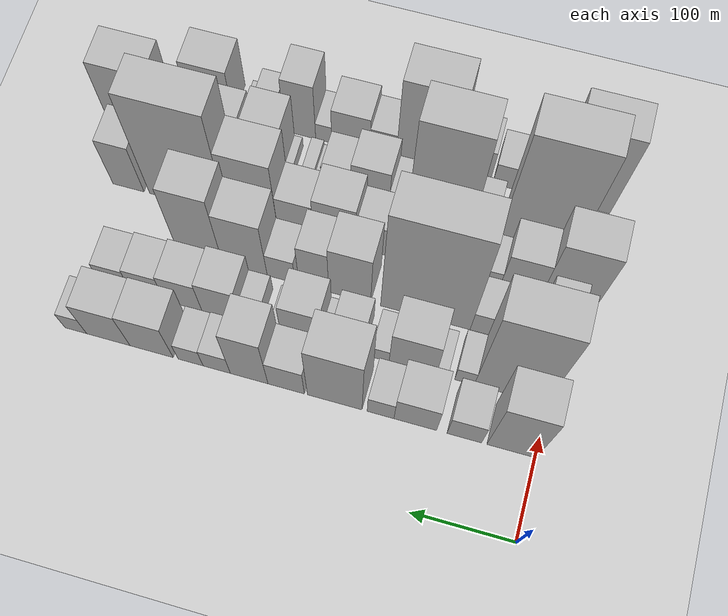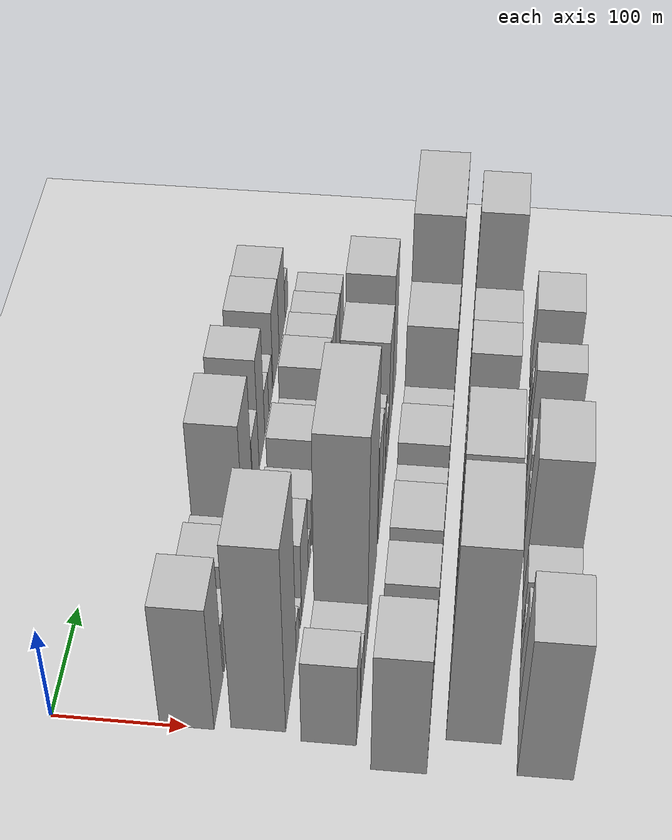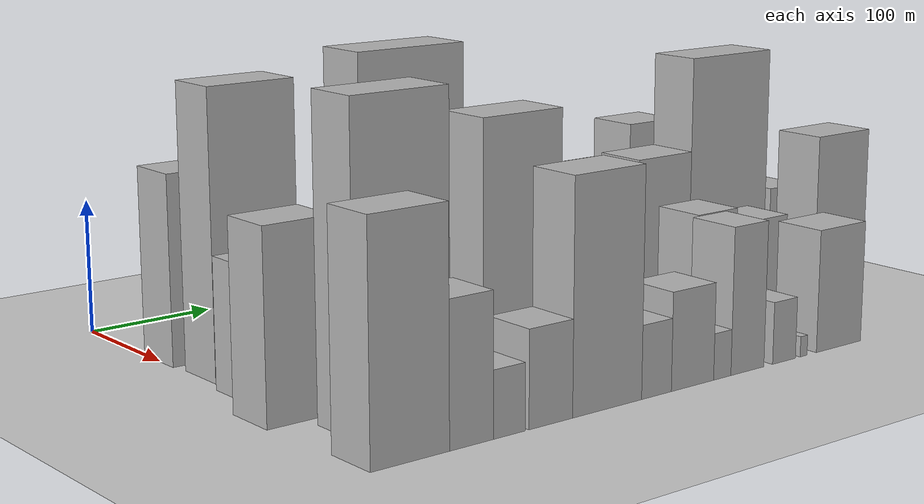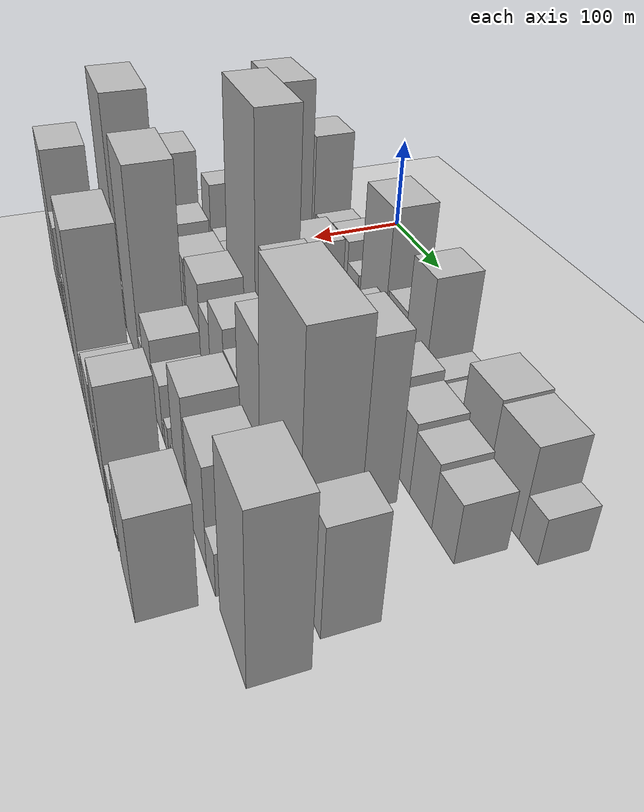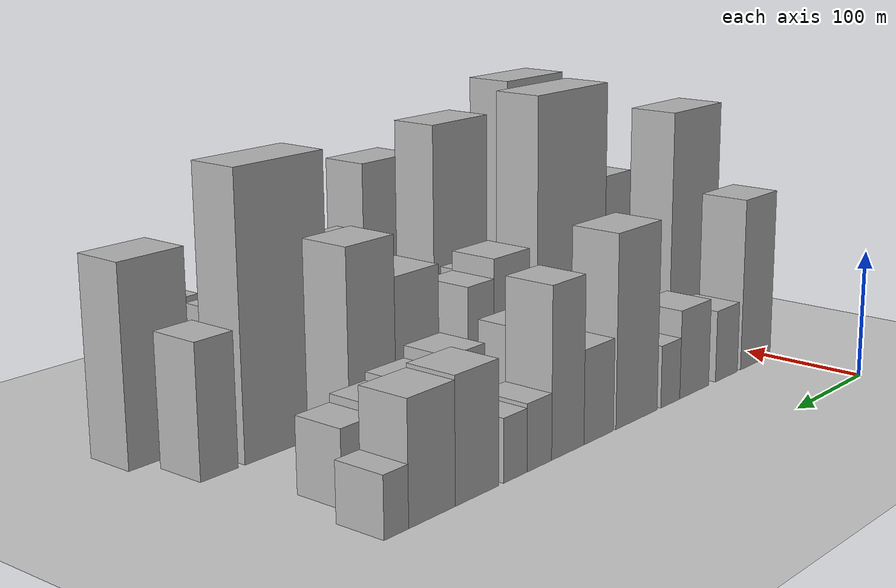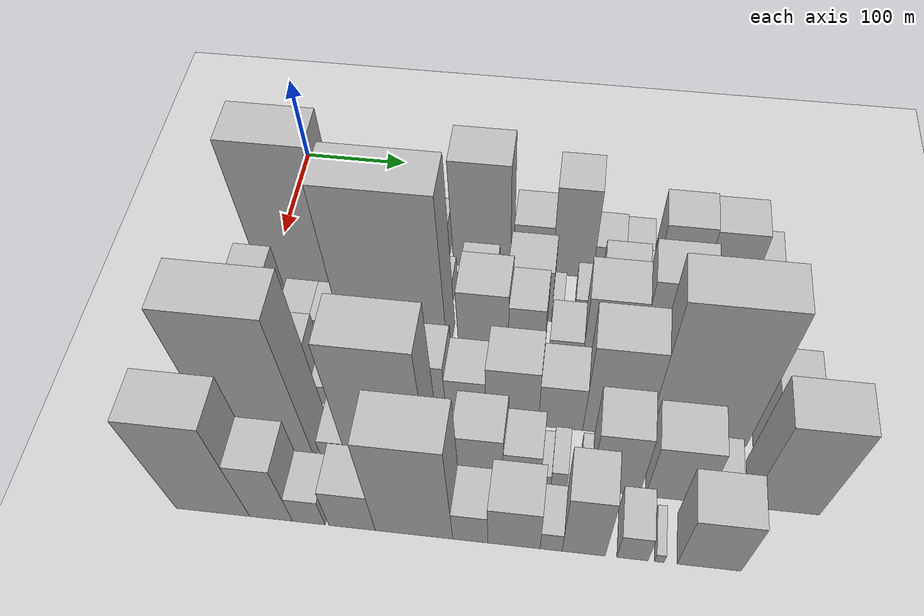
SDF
<sdf version="1.6">
 <world name="default">
  <include>
   <name>ground_plane_2</name>
   <uri>model://HANNAS_ground_plane</uri>
   <pose>100 0 0  0 0 0</pose>
  </include>
  <model name="building_30">
   <static>1</static>
   <pose>100.0000 22.7070 0 0.000000 0.000000 0.000000</pose>
   <link name="link">
    <pose>0 0 69.00 0 0 0</pose>
    <collision name="collision"><geometry><box><size>40.0000 46.8853 138.0000</size></box></geometry></collision>
    <visual name="visual">
     <cast_shadows>0</cast_shadows>
     <geometry><box><size>40.0000 46.8853 138.0000</size></box></geometry>
     <material>
      <script>
       <uri>model://HANNAS_wall/materials/scripts</uri>
       <uri>model://HANNAS_wall/materials/textures</uri>
       <name>vrc/HANNAS_wall</name>
      </script>
     </material>
    </visual>
   </link>
  </model>
  <model name="building_31">
   <static>1</static>
   <pose>100.0000 67.7144 0 0.000000 0.000000 0.000000</pose>
   <link name="link">
    <pose>0 0 28.50 0 0 0</pose>
    <collision name="collision"><geometry><box><size>40.0000 33.1295 57.0000</size></box></geometry></collision>
    <visual name="visual">
     <cast_shadows>0</cast_shadows>
     <geometry><box><size>40.0000 33.1295 57.0000</size></box></geometry>
     <material>
      <script>
       <uri>model://HANNAS_wall/materials/scripts</uri>
       <uri>model://HANNAS_wall/materials/textures</uri>
       <name>vrc/HANNAS_wall</name>
      </script>
     </material>
    </visual>
   </link>
  </model>
  <model name="building_32">
   <static>1</static>
   <pose>100.0000 114.8831 0 0.000000 0.000000 0.000000</pose>
   <link name="link">
    <pose>0 0 34.50 0 0 0</pose>
    <collision name="collision"><geometry><box><size>40.0000 41.2078 69.0000</size></box></geometry></collision>
    <visual name="visual">
     <cast_shadows>0</cast_shadows>
     <geometry><box><size>40.0000 41.2078 69.0000</size></box></geometry>
     <material>
      <script>
       <uri>model://HANNAS_wall/materials/scripts</uri>
       <uri>model://HANNAS_wall/materials/textures</uri>
       <name>vrc/HANNAS_wall</name>
      </script>
     </material>
    </visual>
   </link>
  </model>
  <model name="building_33">
   <static>1</static>
   <pose>100.0000 148.5015 0 0.000000 0.000000 0.000000</pose>
   <link name="link">
    <pose>0 0 24.00 0 0 0</pose>
    <collision name="collision"><geometry><box><size>40.0000 26.0290 48.0000</size></box></geometry></collision>
    <visual name="visual">
     <cast_shadows>0</cast_shadows>
     <geometry><box><size>40.0000 26.0290 48.0000</size></box></geometry>
     <material>
      <script>
       <uri>model://HANNAS_wall/materials/scripts</uri>
       <uri>model://HANNAS_wall/materials/textures</uri>
       <name>vrc/HANNAS_wall</name>
      </script>
     </material>
    </visual>
   </link>
  </model>
  <model name="building_34">
   <static>1</static>
   <pose>100.0000 193.2299 0 0.000000 0.000000 0.000000</pose>
   <link name="link">
    <pose>0 0 72.00 0 0 0</pose>
    <collision name="collision"><geometry><box><size>40.0000 53.4279 144.0000</size></box></geometry></collision>
    <visual name="visual">
     <cast_shadows>0</cast_shadows>
     <geometry><box><size>40.0000 53.4279 144.0000</size></box></geometry>
     <material>
      <script>
       <uri>model://HANNAS_wall/materials/scripts</uri>
       <uri>model://HANNAS_wall/materials/textures</uri>
       <name>vrc/HANNAS_wall</name>
      </script>
     </material>
    </visual>
   </link>
  </model>
  <model name="building_35">
   <static>1</static>
   <pose>100.0000 240.8931 0 0.000000 0.000000 0.000000</pose>
   <link name="link">
    <pose>0 0 34.50 0 0 0</pose>
    <collision name="collision"><geometry><box><size>40.0000 35.8984 69.0000</size></box></geometry></collision>
    <visual name="visual">
     <cast_shadows>0</cast_shadows>
     <geometry><box><size>40.0000 35.8984 69.0000</size></box></geometry>
     <material>
      <script>
       <uri>model://HANNAS_wall/materials/scripts</uri>
       <uri>model://HANNAS_wall/materials/textures</uri>
       <name>vrc/HANNAS_wall</name>
      </script>
     </material>
    </visual>
   </link>
  </model>
  <model name="building_36">
   <static>1</static>
   <pose>100.0000 277.5376 0 0.000000 0.000000 0.000000</pose>
   <link name="link">
    <pose>0 0 61.50 0 0 0</pose>
    <collision name="collision"><geometry><box><size>40.0000 37.3906 123.0000</size></box></geometry></collision>
    <visual name="visual">
     <cast_shadows>0</cast_shadows>
     <geometry><box><size>40.0000 37.3906 123.0000</size></box></geometry>
     <material>
      <script>
       <uri>model://HANNAS_wall/materials/scripts</uri>
       <uri>model://HANNAS_wall/materials/textures</uri>
       <name>vrc/HANNAS_wall</name>
      </script>
     </material>
    </visual>
   </link>
  </model>
  <model name="building_37">
   <static>1</static>
   <pose>100.0000 309.8478 0 0.000000 0.000000 0.000000</pose>
   <link name="link">
    <pose>0 0 24.00 0 0 0</pose>
    <collision name="collision"><geometry><box><size>40.0000 27.2298 48.0000</size></box></geometry></collision>
    <visual name="visual">
     <cast_shadows>0</cast_shadows>
     <geometry><box><size>40.0000 27.2298 48.0000</size></box></geometry>
     <material>
      <script>
       <uri>model://HANNAS_wall/materials/scripts</uri>
       <uri>model://HANNAS_wall/materials/textures</uri>
       <name>vrc/HANNAS_wall</name>
      </script>
     </material>
    </visual>
   </link>
  </model>
  <model name="building_38">
   <static>1</static>
   <pose>100.0000 335.9975 0 0.000000 0.000000 0.000000</pose>
   <link name="link">
    <pose>0 0 22.50 0 0 0</pose>
    <collision name="collision"><geometry><box><size>40.0000 25.0695 45.0000</size></box></geometry></collision>
    <visual name="visual">
     <cast_shadows>0</cast_shadows>
     <geometry><box><size>40.0000 25.0695 45.0000</size></box></geometry>
     <material>
      <script>
       <uri>model://HANNAS_wall/materials/scripts</uri>
       <uri>model://HANNAS_wall/materials/textures</uri>
       <name>vrc/HANNAS_wall</name>
      </script>
     </material>
    </visual>
   </link>
  </model>
  <model name="building_39">
   <static>1</static>
   <pose>100.0000 375.4038 0 0.000000 0.000000 0.000000</pose>
   <link name="link">
    <pose>0 0 43.50 0 0 0</pose>
    <collision name="collision"><geometry><box><size>40.0000 43.7431 87.0000</size></box></geometry></collision>
    <visual name="visual">
     <cast_shadows>0</cast_shadows>
     <geometry><box><size>40.0000 43.7431 87.0000</size></box></geometry>
     <material>
      <script>
       <uri>model://HANNAS_wall/materials/scripts</uri>
       <uri>model://HANNAS_wall/materials/textures</uri>
       <name>vrc/HANNAS_wall</name>
      </script>
     </material>
    </visual>
   </link>
  </model>
  <model name="building_40">
   <static>1</static>
   <pose>100.0000 419.3778 0 0.000000 0.000000 0.000000</pose>
   <link name="link">
    <pose>0 0 42.00 0 0 0</pose>
    <collision name="collision"><geometry><box><size>40.0000 44.2050 84.0000</size></box></geometry></collision>
    <visual name="visual">
     <cast_shadows>0</cast_shadows>
     <geometry><box><size>40.0000 44.2050 84.0000</size></box></geometry>
     <material>
      <script>
       <uri>model://HANNAS_wall/materials/scripts</uri>
       <uri>model://HANNAS_wall/materials/textures</uri>
       <name>vrc/HANNAS_wall</name>
      </script>
     </material>
    </visual>
   </link>
  </model>
  <model name="building_41">
   <static>1</static>
   <pose>100.0000 452.5612 0 0.000000 0.000000 0.000000</pose>
   <link name="link">
    <pose>0 0 21.00 0 0 0</pose>
    <collision name="collision"><geometry><box><size>40.0000 22.1616 42.0000</size></box></geometry></collision>
    <visual name="visual">
     <cast_shadows>0</cast_shadows>
     <geometry><box><size>40.0000 22.1616 42.0000</size></box></geometry>
     <material>
      <script>
       <uri>model://HANNAS_wall/materials/scripts</uri>
       <uri>model://HANNAS_wall/materials/textures</uri>
       <name>vrc/HANNAS_wall</name>
      </script>
     </material>
    </visual>
   </link>
  </model>
  <model name="building_77">
   <static>1</static>
   <pose>152.0000 36.4637 0 0.000000 0.000000 0.000000</pose>
   <link name="link">
    <pose>0 0 102.00 0 0 0</pose>
    <collision name="collision"><geometry><box><size>40.0000 68.4907 204.0000</size></box></geometry></collision>
    <visual name="visual">
     <cast_shadows>0</cast_shadows>
     <geometry><box><size>40.0000 68.4907 204.0000</size></box></geometry>
     <material>
      <script>
       <uri>model://HANNAS_wall/materials/scripts</uri>
       <uri>model://HANNAS_wall/materials/textures</uri>
       <name>vrc/HANNAS_wall</name>
      </script>
     </material>
    </visual>
   </link>
  </model>
  <model name="building_78">
   <static>1</static>
   <pose>152.0000 80.2445 0 0.000000 0.000000 0.000000</pose>
   <link name="link">
    <pose>0 0 18.00 0 0 0</pose>
    <collision name="collision"><geometry><box><size>40.0000 19.0711 36.0000</size></box></geometry></collision>
    <visual name="visual">
     <cast_shadows>0</cast_shadows>
     <geometry><box><size>40.0000 19.0711 36.0000</size></box></geometry>
     <material>
      <script>
       <uri>model://HANNAS_wall/materials/scripts</uri>
       <uri>model://HANNAS_wall/materials/textures</uri>
       <name>vrc/HANNAS_wall</name>
      </script>
     </material>
    </visual>
   </link>
  </model>
  <model name="building_79">
   <static>1</static>
   <pose>152.0000 102.1510 0 0.000000 0.000000 0.000000</pose>
   <link name="link">
    <pose>0 0 12.00 0 0 0</pose>
    <collision name="collision"><geometry><box><size>40.0000 10.7418 24.0000</size></box></geometry></collision>
    <visual name="visual">
     <cast_shadows>0</cast_shadows>
     <geometry><box><size>40.0000 10.7418 24.0000</size></box></geometry>
     <material>
      <script>
       <uri>model://HANNAS_wall/materials/scripts</uri>
       <uri>model://HANNAS_wall/materials/textures</uri>
       <name>vrc/HANNAS_wall</name>
      </script>
     </material>
    </visual>
   </link>
  </model>
  <model name="building_80">
   <static>1</static>
   <pose>152.0000 130.8561 0 0.000000 0.000000 0.000000</pose>
   <link name="link">
    <pose>0 0 42.00 0 0 0</pose>
    <collision name="collision"><geometry><box><size>40.0000 46.6685 84.0000</size></box></geometry></collision>
    <visual name="visual">
     <cast_shadows>0</cast_shadows>
     <geometry><box><size>40.0000 46.6685 84.0000</size></box></geometry>
     <material>
      <script>
       <uri>model://HANNAS_wall/materials/scripts</uri>
       <uri>model://HANNAS_wall/materials/textures</uri>
       <name>vrc/HANNAS_wall</name>
      </script>
     </material>
    </visual>
   </link>
  </model>
  <model name="building_81">
   <static>1</static>
   <pose>152.0000 162.9774 0 0.000000 0.000000 0.000000</pose>
   <link name="link">
    <pose>0 0 15.00 0 0 0</pose>
    <collision name="collision"><geometry><box><size>40.0000 17.5741 30.0000</size></box></geometry></collision>
    <visual name="visual">
     <cast_shadows>0</cast_shadows>
     <geometry><box><size>40.0000 17.5741 30.0000</size></box></geometry>
     <material>
      <script>
       <uri>model://HANNAS_wall/materials/scripts</uri>
       <uri>model://HANNAS_wall/materials/textures</uri>
       <name>vrc/HANNAS_wall</name>
      </script>
     </material>
    </visual>
   </link>
  </model>
  <model name="building_82">
   <static>1</static>
   <pose>152.0000 195.7945 0 0.000000 0.000000 0.000000</pose>
   <link name="link">
    <pose>0 0 27.00 0 0 0</pose>
    <collision name="collision"><geometry><box><size>40.0000 32.0601 54.0000</size></box></geometry></collision>
    <visual name="visual">
     <cast_shadows>0</cast_shadows>
     <geometry><box><size>40.0000 32.0601 54.0000</size></box></geometry>
     <material>
      <script>
       <uri>model://HANNAS_wall/materials/scripts</uri>
       <uri>model://HANNAS_wall/materials/textures</uri>
       <name>vrc/HANNAS_wall</name>
      </script>
     </material>
    </visual>
   </link>
  </model>
  <model name="building_83">
   <static>1</static>
   <pose>152.0000 217.2642 0 0.000000 0.000000 0.000000</pose>
   <link name="link">
    <pose>0 0 12.00 0 0 0</pose>
    <collision name="collision"><geometry><box><size>40.0000 10.8795 24.0000</size></box></geometry></collision>
    <visual name="visual">
     <cast_shadows>0</cast_shadows>
     <geometry><box><size>40.0000 10.8795 24.0000</size></box></geometry>
     <material>
      <script>
       <uri>model://HANNAS_wall/materials/scripts</uri>
       <uri>model://HANNAS_wall/materials/textures</uri>
       <name>vrc/HANNAS_wall</name>
      </script>
     </material>
    </visual>
   </link>
  </model>
  <model name="building_84">
   <static>1</static>
   <pose>152.0000 242.4938 0 0.000000 0.000000 0.000000</pose>
   <link name="link">
    <pose>0 0 37.50 0 0 0</pose>
    <collision name="collision"><geometry><box><size>40.0000 39.5797 75.0000</size></box></geometry></collision>
    <visual name="visual">
     <cast_shadows>0</cast_shadows>
     <geometry><box><size>40.0000 39.5797 75.0000</size></box></geometry>
     <material>
      <script>
       <uri>model://HANNAS_wall/materials/scripts</uri>
       <uri>model://HANNAS_wall/materials/textures</uri>
       <name>vrc/HANNAS_wall</name>
      </script>
     </material>
    </visual>
   </link>
  </model>
  <model name="building_85">
   <static>1</static>
   <pose>152.0000 267.2904 0 0.000000 0.000000 0.000000</pose>
   <link name="link">
    <pose>0 0 10.50 0 0 0</pose>
    <collision name="collision"><geometry><box><size>40.0000 10.0134 21.0000</size></box></geometry></collision>
    <visual name="visual">
     <cast_shadows>0</cast_shadows>
     <geometry><box><size>40.0000 10.0134 21.0000</size></box></geometry>
     <material>
      <script>
       <uri>model://HANNAS_wall/materials/scripts</uri>
       <uri>model://HANNAS_wall/materials/textures</uri>
       <name>vrc/HANNAS_wall</name>
      </script>
     </material>
    </visual>
   </link>
  </model>
  <model name="building_86">
   <static>1</static>
   <pose>152.0000 293.1294 0 0.000000 0.000000 0.000000</pose>
   <link name="link">
    <pose>0 0 19.50 0 0 0</pose>
    <collision name="collision"><geometry><box><size>40.0000 21.6645 39.0000</size></box></geometry></collision>
    <visual name="visual">
     <cast_shadows>0</cast_shadows>
     <geometry><box><size>40.0000 21.6645 39.0000</size></box></geometry>
     <material>
      <script>
       <uri>model://HANNAS_wall/materials/scripts</uri>
       <uri>model://HANNAS_wall/materials/textures</uri>
       <name>vrc/HANNAS_wall</name>
      </script>
     </material>
    </visual>
   </link>
  </model>
  <model name="building_87">
   <static>1</static>
   <pose>152.0000 322.9626 0 0.000000 0.000000 0.000000</pose>
   <link name="link">
    <pose>0 0 37.50 0 0 0</pose>
    <collision name="collision"><geometry><box><size>40.0000 38.0020 75.0000</size></box></geometry></collision>
    <visual name="visual">
     <cast_shadows>0</cast_shadows>
     <geometry><box><size>40.0000 38.0020 75.0000</size></box></geometry>
     <material>
      <script>
       <uri>model://HANNAS_wall/materials/scripts</uri>
       <uri>model://HANNAS_wall/materials/textures</uri>
       <name>vrc/HANNAS_wall</name>
      </script>
     </material>
    </visual>
   </link>
  </model>
  <model name="building_88">
   <static>1</static>
   <pose>152.0000 361.1476 0 0.000000 0.000000 0.000000</pose>
   <link name="link">
    <pose>0 0 33.00 0 0 0</pose>
    <collision name="collision"><geometry><box><size>40.0000 38.3679 66.0000</size></box></geometry></collision>
    <visual name="visual">
     <cast_shadows>0</cast_shadows>
     <geometry><box><size>40.0000 38.3679 66.0000</size></box></geometry>
     <material>
      <script>
       <uri>model://HANNAS_wall/materials/scripts</uri>
       <uri>model://HANNAS_wall/materials/textures</uri>
       <name>vrc/HANNAS_wall</name>
      </script>
     </material>
    </visual>
   </link>
  </model>
  <model name="building_89">
   <static>1</static>
   <pose>152.0000 397.3490 0 0.000000 0.000000 0.000000</pose>
   <link name="link">
    <pose>0 0 30.00 0 0 0</pose>
    <collision name="collision"><geometry><box><size>40.0000 34.0348 60.0000</size></box></geometry></collision>
    <visual name="visual">
     <cast_shadows>0</cast_shadows>
     <geometry><box><size>40.0000 34.0348 60.0000</size></box></geometry>
     <material>
      <script>
       <uri>model://HANNAS_wall/materials/scripts</uri>
       <uri>model://HANNAS_wall/materials/textures</uri>
       <name>vrc/HANNAS_wall</name>
      </script>
     </material>
    </visual>
   </link>
  </model>
  <model name="building_90">
   <static>1</static>
   <pose>152.0000 430.1039 0 0.000000 0.000000 0.000000</pose>
   <link name="link">
    <pose>0 0 27.00 0 0 0</pose>
    <collision name="collision"><geometry><box><size>40.0000 31.4749 54.0000</size></box></geometry></collision>
    <visual name="visual">
     <cast_shadows>0</cast_shadows>
     <geometry><box><size>40.0000 31.4749 54.0000</size></box></geometry>
     <material>
      <script>
       <uri>model://HANNAS_wall/materials/scripts</uri>
       <uri>model://HANNAS_wall/materials/textures</uri>
       <name>vrc/HANNAS_wall</name>
      </script>
     </material>
    </visual>
   </link>
  </model>
  <model name="building_125">
   <static>1</static>
   <pose>204.0000 11.0380 0 0.000000 0.000000 0.000000</pose>
   <link name="link">
    <pose>0 0 46.50 0 0 0</pose>
    <collision name="collision"><geometry><box><size>40.0000 31.4220 93.0000</size></box></geometry></collision>
    <visual name="visual">
     <cast_shadows>0</cast_shadows>
     <geometry><box><size>40.0000 31.4220 93.0000</size></box></geometry>
     <material>
      <script>
       <uri>model://HANNAS_wall/materials/scripts</uri>
       <uri>model://HANNAS_wall/materials/textures</uri>
       <name>vrc/HANNAS_wall</name>
      </script>
     </material>
    </visual>
   </link>
  </model>
  <model name="building_126">
   <static>1</static>
   <pose>204.0000 45.7857 0 0.000000 0.000000 0.000000</pose>
   <link name="link">
    <pose>0 0 24.00 0 0 0</pose>
    <collision name="collision"><geometry><box><size>40.0000 28.0733 48.0000</size></box></geometry></collision>
    <visual name="visual">
     <cast_shadows>0</cast_shadows>
     <geometry><box><size>40.0000 28.0733 48.0000</size></box></geometry>
     <material>
      <script>
       <uri>model://HANNAS_wall/materials/scripts</uri>
       <uri>model://HANNAS_wall/materials/textures</uri>
       <name>vrc/HANNAS_wall</name>
      </script>
     </material>
    </visual>
   </link>
  </model>
  <model name="building_127">
   <static>1</static>
   <pose>204.0000 73.5338 0 0.000000 0.000000 0.000000</pose>
   <link name="link">
    <pose>0 0 24.00 0 0 0</pose>
    <collision name="collision"><geometry><box><size>40.0000 27.4231 48.0000</size></box></geometry></collision>
    <visual name="visual">
     <cast_shadows>0</cast_shadows>
     <geometry><box><size>40.0000 27.4231 48.0000</size></box></geometry>
     <material>
      <script>
       <uri>model://HANNAS_wall/materials/scripts</uri>
       <uri>model://HANNAS_wall/materials/textures</uri>
       <name>vrc/HANNAS_wall</name>
      </script>
     </material>
    </visual>
   </link>
  </model>
  <model name="building_128">
   <static>1</static>
   <pose>204.0000 131.9906 0 0.000000 0.000000 0.000000</pose>
   <link name="link">
    <pose>0 0 112.50 0 0 0</pose>
    <collision name="collision"><geometry><box><size>40.0000 89.4905 225.0000</size></box></geometry></collision>
    <visual name="visual">
     <cast_shadows>0</cast_shadows>
     <geometry><box><size>40.0000 89.4905 225.0000</size></box></geometry>
     <material>
      <script>
       <uri>model://HANNAS_wall/materials/scripts</uri>
       <uri>model://HANNAS_wall/materials/textures</uri>
       <name>vrc/HANNAS_wall</name>
      </script>
     </material>
    </visual>
   </link>
  </model>
  <model name="building_129">
   <static>1</static>
   <pose>204.0000 207.8987 0 0.000000 0.000000 0.000000</pose>
   <link name="link">
    <pose>0 0 55.50 0 0 0</pose>
    <collision name="collision"><geometry><box><size>40.0000 42.3256 111.0000</size></box></geometry></collision>
    <visual name="visual">
     <cast_shadows>0</cast_shadows>
     <geometry><box><size>40.0000 42.3256 111.0000</size></box></geometry>
     <material>
      <script>
       <uri>model://HANNAS_wall/materials/scripts</uri>
       <uri>model://HANNAS_wall/materials/textures</uri>
       <name>vrc/HANNAS_wall</name>
      </script>
     </material>
    </visual>
   </link>
  </model>
  <model name="building_130">
   <static>1</static>
   <pose>204.0000 244.1516 0 0.000000 0.000000 0.000000</pose>
   <link name="link">
    <pose>0 0 48.00 0 0 0</pose>
    <collision name="collision"><geometry><box><size>40.0000 30.1802 96.0000</size></box></geometry></collision>
    <visual name="visual">
     <cast_shadows>0</cast_shadows>
     <geometry><box><size>40.0000 30.1802 96.0000</size></box></geometry>
     <material>
      <script>
       <uri>model://HANNAS_wall/materials/scripts</uri>
       <uri>model://HANNAS_wall/materials/textures</uri>
       <name>vrc/HANNAS_wall</name>
      </script>
     </material>
    </visual>
   </link>
  </model>
  <model name="building_131">
   <static>1</static>
   <pose>204.0000 277.4495 0 0.000000 0.000000 0.000000</pose>
   <link name="link">
    <pose>0 0 27.00 0 0 0</pose>
    <collision name="collision"><geometry><box><size>40.0000 28.4156 54.0000</size></box></geometry></collision>
    <visual name="visual">
     <cast_shadows>0</cast_shadows>
     <geometry><box><size>40.0000 28.4156 54.0000</size></box></geometry>
     <material>
      <script>
       <uri>model://HANNAS_wall/materials/scripts</uri>
       <uri>model://HANNAS_wall/materials/textures</uri>
       <name>vrc/HANNAS_wall</name>
      </script>
     </material>
    </visual>
   </link>
  </model>
  <model name="building_132">
   <static>1</static>
   <pose>204.0000 314.5727 0 0.000000 0.000000 0.000000</pose>
   <link name="link">
    <pose>0 0 60.00 0 0 0</pose>
    <collision name="collision"><geometry><box><size>40.0000 45.8308 120.0000</size></box></geometry></collision>
    <visual name="visual">
     <cast_shadows>0</cast_shadows>
     <geometry><box><size>40.0000 45.8308 120.0000</size></box></geometry>
     <material>
      <script>
       <uri>model://HANNAS_wall/materials/scripts</uri>
       <uri>model://HANNAS_wall/materials/textures</uri>
       <name>vrc/HANNAS_wall</name>
      </script>
     </material>
    </visual>
   </link>
  </model>
  <model name="building_133">
   <static>1</static>
   <pose>204.0000 360.7413 0 0.000000 0.000000 0.000000</pose>
   <link name="link">
    <pose>0 0 75.00 0 0 0</pose>
    <collision name="collision"><geometry><box><size>40.0000 46.5063 150.0000</size></box></geometry></collision>
    <visual name="visual">
     <cast_shadows>0</cast_shadows>
     <geometry><box><size>40.0000 46.5063 150.0000</size></box></geometry>
     <material>
      <script>
       <uri>model://HANNAS_wall/materials/scripts</uri>
       <uri>model://HANNAS_wall/materials/textures</uri>
       <name>vrc/HANNAS_wall</name>
      </script>
     </material>
    </visual>
   </link>
  </model>
  <model name="building_171">
   <static>1</static>
   <pose>256.0000 2.6403 0 0.000000 0.000000 0.000000</pose>
   <link name="link">
    <pose>0 0 66.00 0 0 0</pose>
    <collision name="collision"><geometry><box><size>40.0000 52.7900 132.0000</size></box></geometry></collision>
    <visual name="visual">
     <cast_shadows>0</cast_shadows>
     <geometry><box><size>40.0000 52.7900 132.0000</size></box></geometry>
     <material>
      <script>
       <uri>model://HANNAS_wall/materials/scripts</uri>
       <uri>model://HANNAS_wall/materials/textures</uri>
       <name>vrc/HANNAS_wall</name>
      </script>
     </material>
    </visual>
   </link>
  </model>
  <model name="building_172">
   <static>1</static>
   <pose>256.0000 49.2573 0 0.000000 0.000000 0.000000</pose>
   <link name="link">
    <pose>0 0 39.00 0 0 0</pose>
    <collision name="collision"><geometry><box><size>40.0000 40.4439 78.0000</size></box></geometry></collision>
    <visual name="visual">
     <cast_shadows>0</cast_shadows>
     <geometry><box><size>40.0000 40.4439 78.0000</size></box></geometry>
     <material>
      <script>
       <uri>model://HANNAS_wall/materials/scripts</uri>
       <uri>model://HANNAS_wall/materials/textures</uri>
       <name>vrc/HANNAS_wall</name>
      </script>
     </material>
    </visual>
   </link>
  </model>
  <model name="building_173">
   <static>1</static>
   <pose>256.0000 77.7091 0 0.000000 0.000000 0.000000</pose>
   <link name="link">
    <pose>0 0 15.00 0 0 0</pose>
    <collision name="collision"><geometry><box><size>40.0000 16.4597 30.0000</size></box></geometry></collision>
    <visual name="visual">
     <cast_shadows>0</cast_shadows>
     <geometry><box><size>40.0000 16.4597 30.0000</size></box></geometry>
     <material>
      <script>
       <uri>model://HANNAS_wall/materials/scripts</uri>
       <uri>model://HANNAS_wall/materials/textures</uri>
       <name>vrc/HANNAS_wall</name>
      </script>
     </material>
    </visual>
   </link>
  </model>
  <model name="building_174">
   <static>1</static>
   <pose>256.0000 106.9153 0 0.000000 0.000000 0.000000</pose>
   <link name="link">
    <pose>0 0 37.50 0 0 0</pose>
    <collision name="collision"><geometry><box><size>40.0000 41.9527 75.0000</size></box></geometry></collision>
    <visual name="visual">
     <cast_shadows>0</cast_shadows>
     <geometry><box><size>40.0000 41.9527 75.0000</size></box></geometry>
     <material>
      <script>
       <uri>model://HANNAS_wall/materials/scripts</uri>
       <uri>model://HANNAS_wall/materials/textures</uri>
       <name>vrc/HANNAS_wall</name>
      </script>
     </material>
    </visual>
   </link>
  </model>
  <model name="building_175">
   <static>1</static>
   <pose>256.0000 158.7734 0 0.000000 0.000000 0.000000</pose>
   <link name="link">
    <pose>0 0 40.50 0 0 0</pose>
    <collision name="collision"><geometry><box><size>40.0000 47.7634 81.0000</size></box></geometry></collision>
    <visual name="visual">
     <cast_shadows>0</cast_shadows>
     <geometry><box><size>40.0000 47.7634 81.0000</size></box></geometry>
     <material>
      <script>
       <uri>model://HANNAS_wall/materials/scripts</uri>
       <uri>model://HANNAS_wall/materials/textures</uri>
       <name>vrc/HANNAS_wall</name>
      </script>
     </material>
    </visual>
   </link>
  </model>
  <model name="building_176">
   <static>1</static>
   <pose>256.0000 199.4659 0 0.000000 0.000000 0.000000</pose>
   <link name="link">
    <pose>0 0 31.50 0 0 0</pose>
    <collision name="collision"><geometry><box><size>40.0000 33.6218 63.0000</size></box></geometry></collision>
    <visual name="visual">
     <cast_shadows>0</cast_shadows>
     <geometry><box><size>40.0000 33.6218 63.0000</size></box></geometry>
     <material>
      <script>
       <uri>model://HANNAS_wall/materials/scripts</uri>
       <uri>model://HANNAS_wall/materials/textures</uri>
       <name>vrc/HANNAS_wall</name>
      </script>
     </material>
    </visual>
   </link>
  </model>
  <model name="building_177">
   <static>1</static>
   <pose>256.0000 238.1404 0 0.000000 0.000000 0.000000</pose>
   <link name="link">
    <pose>0 0 43.50 0 0 0</pose>
    <collision name="collision"><geometry><box><size>40.0000 43.7272 87.0000</size></box></geometry></collision>
    <visual name="visual">
     <cast_shadows>0</cast_shadows>
     <geometry><box><size>40.0000 43.7272 87.0000</size></box></geometry>
     <material>
      <script>
       <uri>model://HANNAS_wall/materials/scripts</uri>
       <uri>model://HANNAS_wall/materials/textures</uri>
       <name>vrc/HANNAS_wall</name>
      </script>
     </material>
    </visual>
   </link>
  </model>
  <model name="building_178">
   <static>1</static>
   <pose>256.0000 278.6179 0 0.000000 0.000000 0.000000</pose>
   <link name="link">
    <pose>0 0 34.50 0 0 0</pose>
    <collision name="collision"><geometry><box><size>40.0000 37.2277 69.0000</size></box></geometry></collision>
    <visual name="visual">
     <cast_shadows>0</cast_shadows>
     <geometry><box><size>40.0000 37.2277 69.0000</size></box></geometry>
     <material>
      <script>
       <uri>model://HANNAS_wall/materials/scripts</uri>
       <uri>model://HANNAS_wall/materials/textures</uri>
       <name>vrc/HANNAS_wall</name>
      </script>
     </material>
    </visual>
   </link>
  </model>
  <model name="building_179">
   <static>1</static>
   <pose>256.0000 323.7994 0 0.000000 0.000000 0.000000</pose>
   <link name="link">
    <pose>0 0 67.50 0 0 0</pose>
    <collision name="collision"><geometry><box><size>40.0000 53.1354 135.0000</size></box></geometry></collision>
    <visual name="visual">
     <cast_shadows>0</cast_shadows>
     <geometry><box><size>40.0000 53.1354 135.0000</size></box></geometry>
     <material>
      <script>
       <uri>model://HANNAS_wall/materials/scripts</uri>
       <uri>model://HANNAS_wall/materials/textures</uri>
       <name>vrc/HANNAS_wall</name>
      </script>
     </material>
    </visual>
   </link>
  </model>
  <model name="building_180">
   <static>1</static>
   <pose>256.0000 391.1219 0 0.000000 0.000000 0.000000</pose>
   <link name="link">
    <pose>0 0 102.00 0 0 0</pose>
    <collision name="collision"><geometry><box><size>40.0000 81.5095 204.0000</size></box></geometry></collision>
    <visual name="visual">
     <cast_shadows>0</cast_shadows>
     <geometry><box><size>40.0000 81.5095 204.0000</size></box></geometry>
     <material>
      <script>
       <uri>model://HANNAS_wall/materials/scripts</uri>
       <uri>model://HANNAS_wall/materials/textures</uri>
       <name>vrc/HANNAS_wall</name>
      </script>
     </material>
    </visual>
   </link>
  </model>
  <model name="building_181">
   <static>1</static>
   <pose>256.0000 454.4426 0 0.000000 0.000000 0.000000</pose>
   <link name="link">
    <pose>0 0 48.00 0 0 0</pose>
    <collision name="collision"><geometry><box><size>40.0000 33.1320 96.0000</size></box></geometry></collision>
    <visual name="visual">
     <cast_shadows>0</cast_shadows>
     <geometry><box><size>40.0000 33.1320 96.0000</size></box></geometry>
     <material>
      <script>
       <uri>model://HANNAS_wall/materials/scripts</uri>
       <uri>model://HANNAS_wall/materials/textures</uri>
       <name>vrc/HANNAS_wall</name>
      </script>
     </material>
    </visual>
   </link>
  </model>
  <model name="building_220">
   <static>1</static>
   <pose>308.0000 44.4299 0 0.000000 0.000000 0.000000</pose>
   <link name="link">
    <pose>0 0 108.00 0 0 0</pose>
    <collision name="collision"><geometry><box><size>40.0000 75.6467 216.0000</size></box></geometry></collision>
    <visual name="visual">
     <cast_shadows>0</cast_shadows>
     <geometry><box><size>40.0000 75.6467 216.0000</size></box></geometry>
     <material>
      <script>
       <uri>model://HANNAS_wall/materials/scripts</uri>
       <uri>model://HANNAS_wall/materials/textures</uri>
       <name>vrc/HANNAS_wall</name>
      </script>
     </material>
    </visual>
   </link>
  </model>
  <model name="building_221">
   <static>1</static>
   <pose>308.0000 98.9404 0 0.000000 0.000000 0.000000</pose>
   <link name="link">
    <pose>0 0 19.50 0 0 0</pose>
    <collision name="collision"><geometry><box><size>40.0000 21.3744 39.0000</size></box></geometry></collision>
    <visual name="visual">
     <cast_shadows>0</cast_shadows>
     <geometry><box><size>40.0000 21.3744 39.0000</size></box></geometry>
     <material>
      <script>
       <uri>model://HANNAS_wall/materials/scripts</uri>
       <uri>model://HANNAS_wall/materials/textures</uri>
       <name>vrc/HANNAS_wall</name>
      </script>
     </material>
    </visual>
   </link>
  </model>
  <model name="building_222">
   <static>1</static>
   <pose>308.0000 143.1758 0 0.000000 0.000000 0.000000</pose>
   <link name="link">
    <pose>0 0 96.00 0 0 0</pose>
    <collision name="collision"><geometry><box><size>40.0000 67.0963 192.0000</size></box></geometry></collision>
    <visual name="visual">
     <cast_shadows>0</cast_shadows>
     <geometry><box><size>40.0000 67.0963 192.0000</size></box></geometry>
     <material>
      <script>
       <uri>model://HANNAS_wall/materials/scripts</uri>
       <uri>model://HANNAS_wall/materials/textures</uri>
       <name>vrc/HANNAS_wall</name>
      </script>
     </material>
    </visual>
   </link>
  </model>
  <model name="building_223">
   <static>1</static>
   <pose>308.0000 186.3590 0 0.000000 0.000000 0.000000</pose>
   <link name="link">
    <pose>0 0 18.00 0 0 0</pose>
    <collision name="collision"><geometry><box><size>40.0000 19.2700 36.0000</size></box></geometry></collision>
    <visual name="visual">
     <cast_shadows>0</cast_shadows>
     <geometry><box><size>40.0000 19.2700 36.0000</size></box></geometry>
     <material>
      <script>
       <uri>model://HANNAS_wall/materials/scripts</uri>
       <uri>model://HANNAS_wall/materials/textures</uri>
       <name>vrc/HANNAS_wall</name>
      </script>
     </material>
    </visual>
   </link>
  </model>
  <model name="building_224">
   <static>1</static>
   <pose>308.0000 216.0818 0 0.000000 0.000000 0.000000</pose>
   <link name="link">
    <pose>0 0 36.00 0 0 0</pose>
    <collision name="collision"><geometry><box><size>40.0000 40.1757 72.0000</size></box></geometry></collision>
    <visual name="visual">
     <cast_shadows>0</cast_shadows>
     <geometry><box><size>40.0000 40.1757 72.0000</size></box></geometry>
     <material>
      <script>
       <uri>model://HANNAS_wall/materials/scripts</uri>
       <uri>model://HANNAS_wall/materials/textures</uri>
       <name>vrc/HANNAS_wall</name>
      </script>
     </material>
    </visual>
   </link>
  </model>
  <model name="building_225">
   <static>1</static>
   <pose>308.0000 251.3866 0 0.000000 0.000000 0.000000</pose>
   <link name="link">
    <pose>0 0 25.50 0 0 0</pose>
    <collision name="collision"><geometry><box><size>40.0000 30.4339 51.0000</size></box></geometry></collision>
    <visual name="visual">
     <cast_shadows>0</cast_shadows>
     <geometry><box><size>40.0000 30.4339 51.0000</size></box></geometry>
     <material>
      <script>
       <uri>model://HANNAS_wall/materials/scripts</uri>
       <uri>model://HANNAS_wall/materials/textures</uri>
       <name>vrc/HANNAS_wall</name>
      </script>
     </material>
    </visual>
   </link>
  </model>
  <model name="building_226">
   <static>1</static>
   <pose>308.0000 270.7420 0 0.000000 0.000000 0.000000</pose>
   <link name="link">
    <pose>0 0 9.00 0 0 0</pose>
    <collision name="collision"><geometry><box><size>40.0000 8.2770 18.0000</size></box></geometry></collision>
    <visual name="visual">
     <cast_shadows>0</cast_shadows>
     <geometry><box><size>40.0000 8.2770 18.0000</size></box></geometry>
     <material>
      <script>
       <uri>model://HANNAS_wall/materials/scripts</uri>
       <uri>model://HANNAS_wall/materials/textures</uri>
       <name>vrc/HANNAS_wall</name>
      </script>
     </material>
    </visual>
   </link>
  </model>
  <model name="building_227">
   <static>1</static>
   <pose>308.0000 281.3095 0 0.000000 0.000000 0.000000</pose>
   <link name="link">
    <pose>0 0 13.50 0 0 0</pose>
    <collision name="collision"><geometry><box><size>40.0000 12.8579 27.0000</size></box></geometry></collision>
    <visual name="visual">
     <cast_shadows>0</cast_shadows>
     <geometry><box><size>40.0000 12.8579 27.0000</size></box></geometry>
     <material>
      <script>
       <uri>model://HANNAS_wall/materials/scripts</uri>
       <uri>model://HANNAS_wall/materials/textures</uri>
       <name>vrc/HANNAS_wall</name>
      </script>
     </material>
    </visual>
   </link>
  </model>
  <model name="building_228">
   <static>1</static>
   <pose>308.0000 301.9765 0 0.000000 0.000000 0.000000</pose>
   <link name="link">
    <pose>0 0 10.50 0 0 0</pose>
    <collision name="collision"><geometry><box><size>40.0000 8.4761 21.0000</size></box></geometry></collision>
    <visual name="visual">
     <cast_shadows>0</cast_shadows>
     <geometry><box><size>40.0000 8.4761 21.0000</size></box></geometry>
     <material>
      <script>
       <uri>model://HANNAS_wall/materials/scripts</uri>
       <uri>model://HANNAS_wall/materials/textures</uri>
       <name>vrc/HANNAS_wall</name>
      </script>
     </material>
    </visual>
   </link>
  </model>
  <model name="building_229">
   <static>1</static>
   <pose>308.0000 325.9552 0 0.000000 0.000000 0.000000</pose>
   <link name="link">
    <pose>0 0 51.00 0 0 0</pose>
    <collision name="collision"><geometry><box><size>40.0000 39.4813 102.0000</size></box></geometry></collision>
    <visual name="visual">
     <cast_shadows>0</cast_shadows>
     <geometry><box><size>40.0000 39.4813 102.0000</size></box></geometry>
     <material>
      <script>
       <uri>model://HANNAS_wall/materials/scripts</uri>
       <uri>model://HANNAS_wall/materials/textures</uri>
       <name>vrc/HANNAS_wall</name>
      </script>
     </material>
    </visual>
   </link>
  </model>
  <model name="building_230">
   <static>1</static>
   <pose>308.0000 374.9170 0 0.000000 0.000000 0.000000</pose>
   <link name="link">
    <pose>0 0 45.00 0 0 0</pose>
    <collision name="collision"><geometry><box><size>40.0000 48.4422 90.0000</size></box></geometry></collision>
    <visual name="visual">
     <cast_shadows>0</cast_shadows>
     <geometry><box><size>40.0000 48.4422 90.0000</size></box></geometry>
     <material>
      <script>
       <uri>model://HANNAS_wall/materials/scripts</uri>
       <uri>model://HANNAS_wall/materials/textures</uri>
       <name>vrc/HANNAS_wall</name>
      </script>
     </material>
    </visual>
   </link>
  </model>
  <model name="building_231">
   <static>1</static>
   <pose>308.0000 410.5439 0 0.000000 0.000000 0.000000</pose>
   <link name="link">
    <pose>0 0 19.50 0 0 0</pose>
    <collision name="collision"><geometry><box><size>40.0000 22.8116 39.0000</size></box></geometry></collision>
    <visual name="visual">
     <cast_shadows>0</cast_shadows>
     <geometry><box><size>40.0000 22.8116 39.0000</size></box></geometry>
     <material>
      <script>
       <uri>model://HANNAS_wall/materials/scripts</uri>
       <uri>model://HANNAS_wall/materials/textures</uri>
       <name>vrc/HANNAS_wall</name>
      </script>
     </material>
    </visual>
   </link>
  </model>
  <model name="building_232">
   <static>1</static>
   <pose>308.0000 459.9810 0 0.000000 0.000000 0.000000</pose>
   <link name="link">
    <pose>0 0 72.00 0 0 0</pose>
    <collision name="collision"><geometry><box><size>40.0000 56.0627 144.0000</size></box></geometry></collision>
    <visual name="visual">
     <cast_shadows>0</cast_shadows>
     <geometry><box><size>40.0000 56.0627 144.0000</size></box></geometry>
     <material>
      <script>
       <uri>model://HANNAS_wall/materials/scripts</uri>
       <uri>model://HANNAS_wall/materials/textures</uri>
       <name>vrc/HANNAS_wall</name>
      </script>
     </material>
    </visual>
   </link>
  </model>
  <model name="building_263">
   <static>1</static>
   <pose>360.0000 10.9923 0 0.000000 0.000000 0.000000</pose>
   <link name="link">
    <pose>0 0 78.00 0 0 0</pose>
    <collision name="collision"><geometry><box><size>40.0000 59.6371 156.0000</size></box></geometry></collision>
    <visual name="visual">
     <cast_shadows>0</cast_shadows>
     <geometry><box><size>40.0000 59.6371 156.0000</size></box></geometry>
     <material>
      <script>
       <uri>model://HANNAS_wall/materials/scripts</uri>
       <uri>model://HANNAS_wall/materials/textures</uri>
       <name>vrc/HANNAS_wall</name>
      </script>
     </material>
    </visual>
   </link>
  </model>
  <model name="building_264">
   <static>1</static>
   <pose>360.0000 58.1134 0 0.000000 0.000000 0.000000</pose>
   <link name="link">
    <pose>0 0 48.00 0 0 0</pose>
    <collision name="collision"><geometry><box><size>40.0000 34.6051 96.0000</size></box></geometry></collision>
    <visual name="visual">
     <cast_shadows>0</cast_shadows>
     <geometry><box><size>40.0000 34.6051 96.0000</size></box></geometry>
     <material>
      <script>
       <uri>model://HANNAS_wall/materials/scripts</uri>
       <uri>model://HANNAS_wall/materials/textures</uri>
       <name>vrc/HANNAS_wall</name>
      </script>
     </material>
    </visual>
   </link>
  </model>
  <model name="building_265">
   <static>1</static>
   <pose>360.0000 88.4481 0 0.000000 0.000000 0.000000</pose>
   <link name="link">
    <pose>0 0 22.50 0 0 0</pose>
    <collision name="collision"><geometry><box><size>40.0000 26.0644 45.0000</size></box></geometry></collision>
    <visual name="visual">
     <cast_shadows>0</cast_shadows>
     <geometry><box><size>40.0000 26.0644 45.0000</size></box></geometry>
     <material>
      <script>
       <uri>model://HANNAS_wall/materials/scripts</uri>
       <uri>model://HANNAS_wall/materials/textures</uri>
       <name>vrc/HANNAS_wall</name>
      </script>
     </material>
    </visual>
   </link>
  </model>
  <model name="building_266">
   <static>1</static>
   <pose>360.0000 122.9560 0 0.000000 0.000000 0.000000</pose>
   <link name="link">
    <pose>0 0 33.00 0 0 0</pose>
    <collision name="collision"><geometry><box><size>40.0000 36.9513 66.0000</size></box></geometry></collision>
    <visual name="visual">
     <cast_shadows>0</cast_shadows>
     <geometry><box><size>40.0000 36.9513 66.0000</size></box></geometry>
     <material>
      <script>
       <uri>model://HANNAS_wall/materials/scripts</uri>
       <uri>model://HANNAS_wall/materials/textures</uri>
       <name>vrc/HANNAS_wall</name>
      </script>
     </material>
    </visual>
   </link>
  </model>
  <model name="building_267">
   <static>1</static>
   <pose>360.0000 172.0749 0 0.000000 0.000000 0.000000</pose>
   <link name="link">
    <pose>0 0 79.50 0 0 0</pose>
    <collision name="collision"><geometry><box><size>40.0000 61.2865 159.0000</size></box></geometry></collision>
    <visual name="visual">
     <cast_shadows>0</cast_shadows>
     <geometry><box><size>40.0000 61.2865 159.0000</size></box></geometry>
     <material>
      <script>
       <uri>model://HANNAS_wall/materials/scripts</uri>
       <uri>model://HANNAS_wall/materials/textures</uri>
       <name>vrc/HANNAS_wall</name>
      </script>
     </material>
    </visual>
   </link>
  </model>
  <model name="building_268">
   <static>1</static>
   <pose>360.0000 216.5116 0 0.000000 0.000000 0.000000</pose>
   <link name="link">
    <pose>0 0 25.50 0 0 0</pose>
    <collision name="collision"><geometry><box><size>40.0000 27.5870 51.0000</size></box></geometry></collision>
    <visual name="visual">
     <cast_shadows>0</cast_shadows>
     <geometry><box><size>40.0000 27.5870 51.0000</size></box></geometry>
     <material>
      <script>
       <uri>model://HANNAS_wall/materials/scripts</uri>
       <uri>model://HANNAS_wall/materials/textures</uri>
       <name>vrc/HANNAS_wall</name>
      </script>
     </material>
    </visual>
   </link>
  </model>
  <model name="building_269">
   <static>1</static>
   <pose>360.0000 250.5984 0 0.000000 0.000000 0.000000</pose>
   <link name="link">
    <pose>0 0 34.50 0 0 0</pose>
    <collision name="collision"><geometry><box><size>40.0000 40.5865 69.0000</size></box></geometry></collision>
    <visual name="visual">
     <cast_shadows>0</cast_shadows>
     <geometry><box><size>40.0000 40.5865 69.0000</size></box></geometry>
     <material>
      <script>
       <uri>model://HANNAS_wall/materials/scripts</uri>
       <uri>model://HANNAS_wall/materials/textures</uri>
       <name>vrc/HANNAS_wall</name>
      </script>
     </material>
    </visual>
   </link>
  </model>
  <model name="building_270">
   <static>1</static>
   <pose>360.0000 279.4057 0 0.000000 0.000000 0.000000</pose>
   <link name="link">
    <pose>0 0 16.50 0 0 0</pose>
    <collision name="collision"><geometry><box><size>40.0000 17.0280 33.0000</size></box></geometry></collision>
    <visual name="visual">
     <cast_shadows>0</cast_shadows>
     <geometry><box><size>40.0000 17.0280 33.0000</size></box></geometry>
     <material>
      <script>
       <uri>model://HANNAS_wall/materials/scripts</uri>
       <uri>model://HANNAS_wall/materials/textures</uri>
       <name>vrc/HANNAS_wall</name>
      </script>
     </material>
    </visual>
   </link>
  </model>
  <model name="building_271">
   <static>1</static>
   <pose>360.0000 304.5741 0 0.000000 0.000000 0.000000</pose>
   <link name="link">
    <pose>0 0 52.50 0 0 0</pose>
    <collision name="collision"><geometry><box><size>40.0000 33.3089 105.0000</size></box></geometry></collision>
    <visual name="visual">
     <cast_shadows>0</cast_shadows>
     <geometry><box><size>40.0000 33.3089 105.0000</size></box></geometry>
     <material>
      <script>
       <uri>model://HANNAS_wall/materials/scripts</uri>
       <uri>model://HANNAS_wall/materials/textures</uri>
       <name>vrc/HANNAS_wall</name>
      </script>
     </material>
    </visual>
   </link>
  </model>
  <model name="building_272">
   <static>1</static>
   <pose>360.0000 342.1686 0 0.000000 0.000000 0.000000</pose>
   <link name="link">
    <pose>0 0 22.50 0 0 0</pose>
    <collision name="collision"><geometry><box><size>40.0000 23.8799 45.0000</size></box></geometry></collision>
    <visual name="visual">
     <cast_shadows>0</cast_shadows>
     <geometry><box><size>40.0000 23.8799 45.0000</size></box></geometry>
     <material>
      <script>
       <uri>model://HANNAS_wall/materials/scripts</uri>
       <uri>model://HANNAS_wall/materials/textures</uri>
       <name>vrc/HANNAS_wall</name>
      </script>
     </material>
    </visual>
   </link>
  </model>
  <model name="building_273">
   <static>1</static>
   <pose>360.0000 362.7973 0 0.000000 0.000000 0.000000</pose>
   <link name="link">
    <pose>0 0 7.50 0 0 0</pose>
    <collision name="collision"><geometry><box><size>40.0000 7.3775 15.0000</size></box></geometry></collision>
    <visual name="visual">
     <cast_shadows>0</cast_shadows>
     <geometry><box><size>40.0000 7.3775 15.0000</size></box></geometry>
     <material>
      <script>
       <uri>model://HANNAS_wall/materials/scripts</uri>
       <uri>model://HANNAS_wall/materials/textures</uri>
       <name>vrc/HANNAS_wall</name>
      </script>
     </material>
    </visual>
   </link>
  </model>
  <model name="building_274">
   <static>1</static>
   <pose>360.0000 400.7940 0 0.000000 0.000000 0.000000</pose>
   <link name="link">
    <pose>0 0 45.00 0 0 0</pose>
    <collision name="collision"><geometry><box><size>40.0000 48.6159 90.0000</size></box></geometry></collision>
    <visual name="visual">
     <cast_shadows>0</cast_shadows>
     <geometry><box><size>40.0000 48.6159 90.0000</size></box></geometry>
     <material>
      <script>
       <uri>model://HANNAS_wall/materials/scripts</uri>
       <uri>model://HANNAS_wall/materials/textures</uri>
       <name>vrc/HANNAS_wall</name>
      </script>
     </material>
    </visual>
   </link>
  </model>
 </world>
</sdf>
